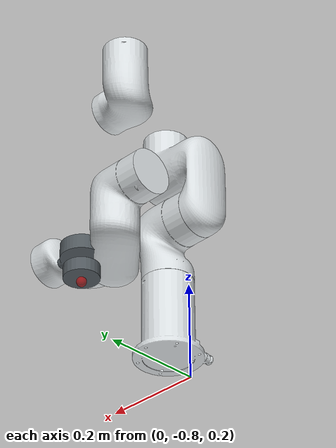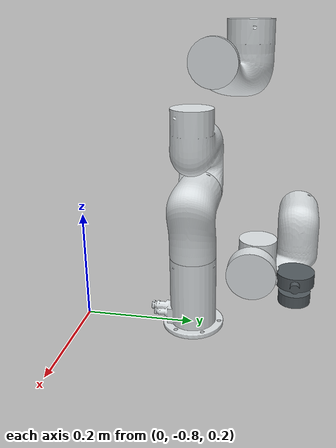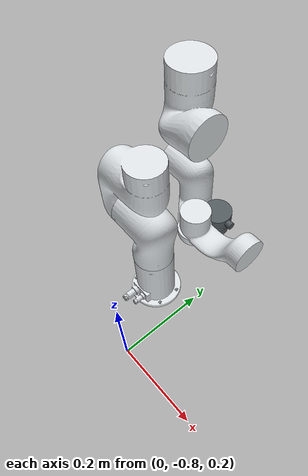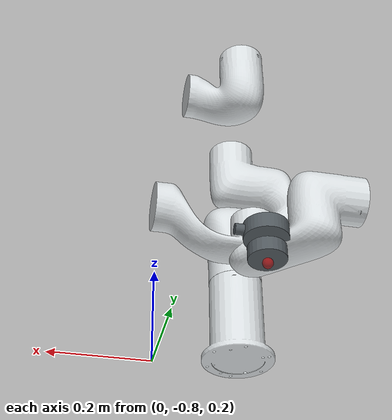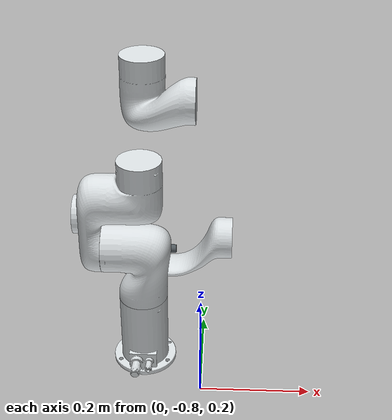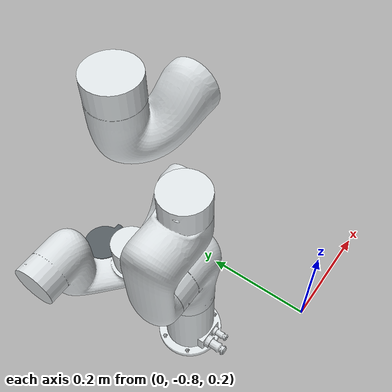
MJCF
<?xml version='1.0' encoding='utf-8'?>
<mujoco model="right xarm6">
  <compiler angle="radian" autolimits="true" meshdir="assets" />
  <option integrator="implicitfast" gravity="0 0 -9.81" />
  <asset>
    <material name="right_white" rgba="0.86 0.88 0.89 1" specular="0.32" shininess="0.42" reflectance="0.04" />
    <material name="right_gray" rgba="0.32 0.35 0.37 1" specular="0.55" shininess="0.62" reflectance="0.10" />
    <material name="right_black" rgba="0.045 0.052 0.058 1" specular="0.16" shininess="0.24" reflectance="0.02" />
    <material name="right_vacuum_rubber" rgba="0.02 0.025 0.025 1" specular="0.06" shininess="0.12" />
    <mesh file="link_base.stl" name="right_link_base" />
    <mesh file="link1.stl" name="right_link1" />
    <mesh file="link2.stl" name="right_link2" />
    <mesh file="link3.stl" name="right_link3" />
    <mesh file="link4.stl" name="right_link4" />
    <mesh file="link5.stl" name="right_link5" />
    <mesh file="link6.stl" name="right_link6" />
    <mesh file="end_tool.stl" name="right_end_tool" />
  </asset>
  <default>
    <default class="right_xarm6">
      <geom type="mesh" material="right_white" />
      <joint axis="0 0 1" armature="0.1" range="-6.28319 6.28319" frictionloss="1" />
      <default class="right_size1">
        <joint damping="10" />
      </default>
      <default class="right_size2">
        <joint damping="5" />
      </default>
      <default class="right_size3">
        <joint damping="2" />
      </default>
      <default class="right_visual">
        <geom type="mesh" contype="0" conaffinity="0" group="2" />
      </default>
      <site size="0.001" rgba="1 0 0 1" group="4" />
    </default>
  </default>
  <worldbody>
    <body name="right_line_base" pos="-0.12 -0.62 0.12" childclass="right_xarm6" euler="0 0 1.5708">
      <inertial pos="-0.021131 -0.0016302 0.056488" quat="0.696843 0.20176 0.10388 0.680376" mass="0.88556" diaginertia="0.00382023 0.00335282 0.00167725" />
      <geom mesh="right_link_base" />
      <body name="right_link1" pos="0 0 0.267">
        <inertial pos="-0.0002 0.02905 -0.01233" quat="0.978953 -0.202769 -0.00441617 -0.0227264" mass="2.382" diaginertia="0.00569127 0.00533384 0.00293865" />
        <joint name="right_joint1" class="right_size1" />
        <geom mesh="right_link1" />
        <body name="right_link2" quat="1 -1 0 0">
          <inertial pos="0.03881 -0.22783 0.03496" quat="0.635305 0.753023 0.170976 -0.010531" mass="2.2675" diaginertia="0.0294477 0.0281783 0.00383449" />
          <joint name="right_joint2" range="-2.059 2.0944" class="right_size1" />
          <geom mesh="right_link2" />
          <body name="right_link3" pos="0.0535 -0.2845 0">
            <inertial pos="0.07041 0.11631 0.0107" quat="0.845838 0.425539 -0.293179 0.132369" mass="1.875" diaginertia="0.00714132 0.00699471 0.00196753" />
            <joint name="right_joint3" range="-3.927 0.19198" class="right_size2" />
            <geom mesh="right_link3" />
            <body name="right_link4" pos="0.0775 0.3425 0" quat="1 -1 0 0">
              <inertial pos="-0.00018 0.01798 -0.02291" quat="0.99929 -0.0369702 0.00179434 -0.00701174" mass="1.3192" diaginertia="0.00489614 0.00447403 0.00132609" />
              <joint name="right_joint4" class="right_size2" />
              <geom mesh="right_link4" />
              <body name="right_link5" pos="0 0 0" quat="1 1 0 0">
                <inertial pos="0.0651 0.03096 0.00315" quat="-0.223008 0.771309 0.16027 0.574163" mass="1.33854" diaginertia="0.00241824 0.00213367 0.00108731" />
                <joint name="right_joint5" range="-1.69297 3.14159" class="right_size3" />
                <geom mesh="right_link5" />
                <body name="right_link6" pos="0.076 0.097 0" quat="1 -1 0 0">
                  <inertial pos="0.00763576 -0.00272358 0.0307029" quat="0.634077 -0.153028 -0.073538 0.754401" mass="0.838615" diaginertia="0.00129456 0.00116006 0.00078716" />
                  <joint name="right_joint6" class="right_size3" />
                  <geom material="right_gray" mesh="right_end_tool" quat="0 0 0 1" />
                  <body name="right_bare_end_effector" pos="0 0 0.015">
                    <inertial pos="0 0 0.02" mass="0.16" diaginertia="0.00008 0.00008 0.00004" />
                    <geom name="right_bare_flange_geom" type="cylinder" pos="0 0 0.012" size="0.032 0.012" material="right_gray" mass="0.16" friction="0.8 0.8 0.8" />
                    <site name="right_link_tcp" pos="0 0 0.030" type="sphere" size="0.009" rgba="1 0 0 0.5" group="1" />
                  </body>
                </body>
              </body>
            </body>
          </body>
        </body>
      </body>
    </body>
  </worldbody>
  <actuator>
    <velocity name="right_vel1" joint="right_joint1" kv="1000" ctrlrange="-3.14159 3.14159" forcerange="-50 50" />
    <velocity name="right_vel2" joint="right_joint2" kv="1000" ctrlrange="-3.14159 3.14159" forcerange="-50 50" />
    <velocity name="right_vel3" joint="right_joint3" kv="1000" ctrlrange="-3.14159 3.14159" forcerange="-30 30" />
    <velocity name="right_vel4" joint="right_joint4" kv="1000" ctrlrange="-3.14159 3.14159" forcerange="-30 30" />
    <velocity name="right_vel5" joint="right_joint5" kv="1000" ctrlrange="-3.14159 3.14159" forcerange="-20 20" />
    <velocity name="right_vel6" joint="right_joint6" kv="1000" ctrlrange="-3.14159 3.14159" forcerange="-20 20" />
  </actuator>
</mujoco>
